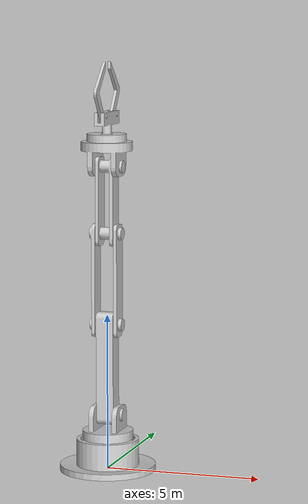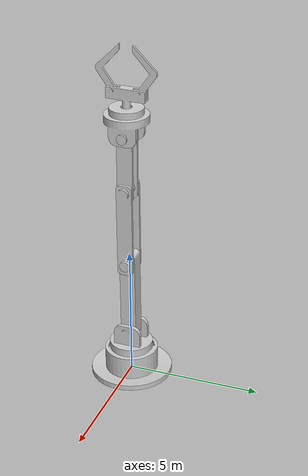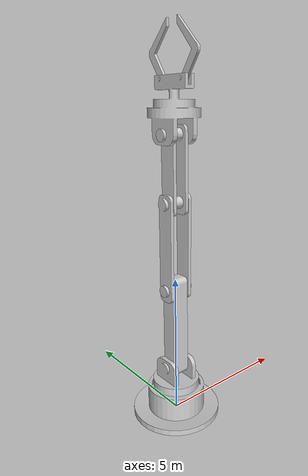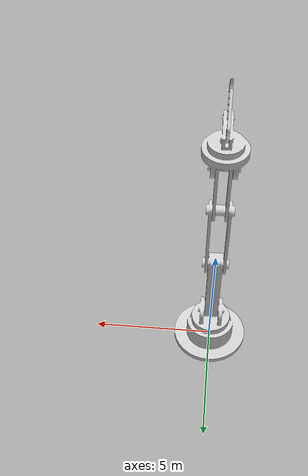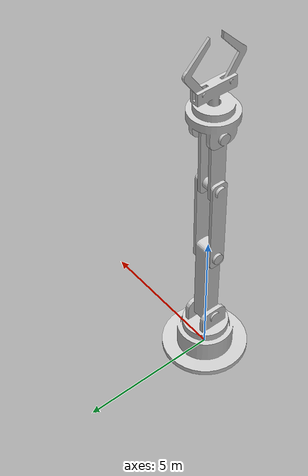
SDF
<sdf version='1.9'>
  <model name='pick_and_drop_arm'>
    <joint name='world_to_base' type='fixed'>
      <pose relative_to='__model__'>0 0 0 0 0 0</pose>
      <parent>world</parent>
      <child>base_link</child>
    </joint>
    <link name='base_link'>
      <pose relative_to='world_to_base'>0 0 0 0 0 0</pose>
        <inertial>
          <pose>0 0 0 0 0 0</pose>
          <mass>5.0</mass>
          <inertia>
            <ixx>0.5</ixx>
            <ixy>0</ixy>
            <ixz>0</ixz>
            <iyy>0.5</iyy>
            <iyz>0</iyz>
            <izz>0.5</izz>
          </inertia>
        </inertial>
      <collision name='base_link_collision'>
        <pose>0 0 0 0 0 0</pose>
        <geometry>
          <mesh>
            <scale>1 1 1</scale>
            <uri>model://pick_and_drop/meshes/base.dae</uri>
          </mesh>
        </geometry>
      </collision>
      <visual name='base_link_visual'>
        <pose>0 0 0 0 0 0</pose>
        <geometry>
          <mesh>
            <scale>1 1 1</scale>
            <uri>model://pick_and_drop/meshes/base.dae</uri>
          </mesh>
        </geometry>
        <material>
            <ambient>0.7 0.7 0.7 1</ambient>
            <diffuse>0.8 0.8 0.8 1</diffuse>
            <specular>0.2 0.2 0.2 1</specular>
        </material>
      </visual>
    </link>
    <joint name='base_joint' type='revolute'>
      <pose relative_to='base_link'>0 0 0.1 0 0 0</pose>
      <parent>base_link</parent>
      <child>link1</child>
      <axis>
        <xyz>0 0 1</xyz>
        <dynamics>
          <damping>5.0</damping>
          <friction>1.0</friction>
          <spring_reference>0</spring_reference>
          <spring_stiffness>0</spring_stiffness>
        </dynamics>
      </axis>
    </joint>
    <link name='link1'>
      <pose relative_to='base_joint'>0 0 0 0 0 0</pose>
        <inertial>
          <mass>4.0</mass>
          <inertia>
            <ixx>0.8</ixx>
            <iyy>0.8</iyy>
            <izz>0.6</izz>
            <ixy>0</ixy>
            <ixz>0</ixz>
            <iyz>0</iyz>
          </inertia>
        </inertial>
      <collision name='link1_collision'>
        <pose>0 0 0 0 0 0</pose>
        <geometry>
          <mesh>
            <scale>1 1 1</scale>
            <uri>model://pick_and_drop/meshes/1.dae</uri>
          </mesh>
        </geometry>
      </collision>
      <visual name='link1_visual'>
        <pose>0 0 0 0 0 0</pose>
        <geometry>
          <mesh>
            <scale>1 1 1</scale>
            <uri>model://pick_and_drop/meshes/1.dae</uri>
          </mesh>
        </geometry>
        <material>
            <ambient>0.7 0.7 0.7 1</ambient>
            <diffuse>0.8 0.8 0.8 1</diffuse>
            <specular>0.2 0.2 0.2 1</specular>
        </material>
      </visual>
    </link>
    <joint name='joint1' type='revolute'>
      <pose relative_to='link1'>0 0 1.67744 0 0 0</pose>
      <parent>link1</parent>
      <child>arm1</child>
      <axis>
        <xyz>1 0 0</xyz>
        <dynamics>
          <damping>8.0</damping>
          <friction>1.5</friction>
          <spring_reference>0</spring_reference>
          <spring_stiffness>0</spring_stiffness>
        </dynamics>
      </axis>
    </joint>
    <link name='arm1'>
      <pose relative_to='joint1'>0 0 0 0 0 0</pose>
        <inertial>
            <mass>5.0</mass>
            <inertia>
                <ixx>6.71</ixx>
                <ixy>0</ixy>
                <ixz>0</ixz>
                <iyy>3.84</iyy>
                <iyz>0</iyz>
                <izz>3.79</izz>
            </inertia>
        </inertial>
      <collision name='arm1_collision'>
        <pose>0 0 0 0 0 0</pose>
        <geometry>
          <mesh>
            <scale>1 1 1</scale>
            <uri>model://pick_and_drop/meshes/arm1.dae</uri>
          </mesh>
        </geometry>
      </collision>
      <visual name='arm1_visual'>
        <pose>0 0 0 0 0 0</pose>
        <geometry>
          <mesh>
            <scale>1 1 1</scale>
            <uri>model://pick_and_drop/meshes/arm1.dae</uri>
          </mesh>
        </geometry>
        <material>
            <ambient>0.7 0.7 0.7 1</ambient>
            <diffuse>0.8 0.8 0.8 1</diffuse>
            <specular>0.2 0.2 0.2 1</specular>
        </material>
      </visual>
    </link>
    <joint name='joint2' type='revolute'>
      <pose relative_to='arm1'>0 -0.007232 2.92735 0 0 0</pose>
      <parent>arm1</parent>
      <child>arm2</child>
      <axis>
        <xyz>1 0 0</xyz>
        <dynamics>
          <damping>8.0</damping>
          <friction>1.5</friction>
          <spring_reference>0</spring_reference>
          <spring_stiffness>0</spring_stiffness>
        </dynamics>
      </axis>
    </joint>
    <link name='arm2'>
      <pose relative_to='joint2'>0 0 0 0 0 0</pose>
        <inertial>
            <mass>5.0</mass>
            <inertia>
                <ixx>6.72</ixx>
                <ixy>0</ixy>
                <ixz>0</ixz>
                <iyy>3.89</iyy>
                <iyz>0</iyz>
                <izz>3.75</izz>
            </inertia>
        </inertial>
      <collision name='arm2_collision'>
        <pose>0 0 0 0 0 0</pose>
        <geometry>
          <mesh>
            <scale>1 1 1</scale>
            <uri>model://pick_and_drop/meshes/arm2.dae</uri>
          </mesh>
        </geometry>
      </collision>
      <visual name='arm2_visual'>
        <pose>0 0 0 0 0 0</pose>
        <geometry>
          <mesh>
            <scale>1 1 1</scale>
            <uri>model://pick_and_drop/meshes/arm2.dae</uri>
          </mesh>
        </geometry>
        <material>
            <ambient>0.7 0.7 0.7 1</ambient>
            <diffuse>0.8 0.8 0.8 1</diffuse>
            <specular>0.2 0.2 0.2 1</specular>
        </material>
      </visual>
    </link>
    <joint name='joint3' type='revolute'>
      <pose relative_to='arm2'>0 0.002234 2.9244 0 0 0</pose>
      <parent>arm2</parent>
      <child>arm3</child>
      <axis>
        <xyz>1 0 0</xyz>
        <dynamics>
          <damping>8.0</damping>
          <friction>1.5</friction>
          <spring_reference>0</spring_reference>
          <spring_stiffness>0</spring_stiffness>
        </dynamics>
      </axis>
    </joint>
    <link name='arm3'>
      <pose relative_to='joint3'>0 0 0 0 0 0</pose>
        <inertial>
            <mass>4.0</mass>
            <inertia>
                <ixx>2.96</ixx>
                <ixy>0</ixy>
                <ixz>0</ixz>
                <iyy>0.70</iyy>
                <iyz>0</iyz>
                <izz>3.08</izz>
            </inertia>
        </inertial>
      <collision name='arm3_collision'>
        <pose>0 0 0 0 0 0</pose>
        <geometry>
          <mesh>
            <scale>1 1 1</scale>
            <uri>model://pick_and_drop/meshes/arm3.dae</uri>
          </mesh>
        </geometry>
      </collision>
      <visual name='arm3_visual'>
        <pose>0 0 0 0 0 0</pose>
        <geometry>
          <mesh>
            <scale>1 1 1</scale>
            <uri>model://pick_and_drop/meshes/arm3.dae</uri>
          </mesh>
        </geometry>
        <material>
            <ambient>0.7 0.7 0.7 1</ambient>
            <diffuse>0.8 0.8 0.8 1</diffuse>
            <specular>0.2 0.2 0.2 1</specular>
        </material>
      </visual>
    </link>
    <joint name='joint4' type='revolute'>
      <pose relative_to='arm3'>0 0.012929 2.12653 0 0 0</pose>
      <parent>arm3</parent>
      <child>wrist</child>
      <axis>
        <xyz>1 0 0</xyz>
        <dynamics>
          <damping>8.0</damping>
          <friction>1.5</friction>
          <spring_reference>0</spring_reference>
          <spring_stiffness>0</spring_stiffness>
        </dynamics>
      </axis>
    </joint>
    <link name='wrist'>
      <pose relative_to='joint4'>0 0 0 0 0 0</pose>
        <inertial>
            <mass>8.0</mass>
            <inertia>
                <ixx>6.37</ixx>
                <ixy>0</ixy>
                <ixz>0</ixz>
                <iyy>5.03</iyy>
                <iyz>0</iyz>
                <izz>4.88</izz>
            </inertia>
        </inertial>
      <collision name='wrist_collision'>
        <pose>0 0 0 0 0 0</pose>
        <geometry>
          <mesh>
            <scale>1 1 1</scale>
            <uri>model://pick_and_drop/meshes/wrist.dae</uri>
          </mesh>
        </geometry>
      </collision>
      <visual name='wrist_visual'>
        <pose>0 0 0 0 0 0</pose>
        <geometry>
          <mesh>
            <scale>1 1 1</scale>
            <uri>model://pick_and_drop/meshes/wrist.dae</uri>
          </mesh>
        </geometry>
        <material>
            <ambient>0.7 0.7 0.7 1</ambient>
            <diffuse>0.8 0.8 0.8 1</diffuse>
            <specular>0.2 0.2 0.2 1</specular>
        </material>
      </visual>
    </link>
    <joint name='finger1_joint' type='revolute'>
      <pose relative_to='wrist'>0.005756 0.522025 1.59808 0 0 0</pose>
      <parent>wrist</parent>
      <child>finger1</child>
      <axis>
        <xyz>1 0 0</xyz>
        <limit>
          <lower>-1.57</lower>
          <upper>0</upper>
        </limit>
        <dynamics>
          <damping>0.5</damping>
          <friction>0.05</friction>
          <spring_reference>0</spring_reference>
          <spring_stiffness>0</spring_stiffness>
        </dynamics>
      </axis>
    </joint>
    <link name='finger1'>
      <pose relative_to='finger1_joint'>0 0 0 0 0 0</pose>
        <inertial>
            <mass>1.0</mass>
            <inertia>
                <ixx>0.32</ixx>
                <ixy>0</ixy>
                <ixz>0</ixz>
                <iyy>0.21</iyy>
                <iyz>0</iyz>
                <izz>0.11</izz>
            </inertia>
        </inertial>
      <collision name='finger1_collision'>
        <pose>0 0 0 0 0 0</pose>
        <geometry>
          <mesh>
            <scale>1 1 1</scale>
            <uri>model://pick_and_drop/meshes/finger1.dae</uri>
          </mesh>
        </geometry>
      </collision>
      <visual name='finger1_visual'>
        <pose>0 0 0 0 0 0</pose>
        <geometry>
          <mesh>
            <scale>1 1 1</scale>
            <uri>model://pick_and_drop/meshes/finger1.dae</uri>
          </mesh>
        </geometry>
        <material>
            <ambient>0.7 0.7 0.7 1</ambient>
            <diffuse>0.8 0.8 0.8 1</diffuse>
            <specular>0.2 0.2 0.2 1</specular>
        </material>
      </visual>
    </link>
    <joint name='finger2_joint' type='revolute'>
      <pose relative_to='wrist'>0.005756 -0.477477 1.61468 0 0 0</pose>
      <parent>wrist</parent>
      <child>finger2</child>
      <axis>
        <xyz>-1 0 0</xyz>
        <limit>
          <lower>-1.57</lower>
          <upper>0</upper>
        </limit>
        <dynamics>
          <damping>0.5</damping>
          <friction>0.05</friction>
          <spring_reference>0</spring_reference>
          <spring_stiffness>0</spring_stiffness>
        </dynamics>
      </axis>
    </joint>
    <link name='finger2'>
      <pose relative_to='finger2_joint'>0 0 0 0 0 0</pose>
        <inertial>
            <mass>1.0</mass>
            <inertia>
                <ixx>0.32</ixx>
                <ixy>0</ixy>
                <ixz>0</ixz>
                <iyy>0.21</iyy>
                <iyz>0</iyz>
                <izz>0.11</izz>
            </inertia>
        </inertial>
      <collision name='finger2_collision'>
        <pose>0 0 0 0 0 0</pose>
        <geometry>
          <mesh>
            <scale>1 1 1</scale>
            <uri>model://pick_and_drop/meshes/finger2.dae</uri>
          </mesh>
        </geometry>
      </collision>
      <visual name='finger2_visual'>
        <pose>0 0 0 0 0 0</pose>
        <geometry>
          <mesh>
            <scale>1 1 1</scale>
            <uri>model://pick_and_drop/meshes/finger2.dae</uri>
          </mesh>
        </geometry>
        <material>
            <ambient>0.7 0.7 0.7 1</ambient>
            <diffuse>0.8 0.8 0.8 1</diffuse>
            <specular>0.2 0.2 0.2 1</specular>
        </material>
      </visual>
    </link>
    <!-- ================= CONTROLLERS ================= -->
<!-- ================= CONTROLLERS ================= -->
    <!-- Torque Control for base_joint (Rotation) -->
    <plugin
      filename="gz-sim-apply-joint-force-system"
      name="gz::sim::systems::ApplyJointForce">
      <joint_name>base_joint</joint_name>
    </plugin>

    <!-- Torque Control for joint1 (Shoulder) -->
    <plugin
      filename="gz-sim-apply-joint-force-system"
      name="gz::sim::systems::ApplyJointForce">
      <joint_name>joint1</joint_name>
    </plugin>

    <!-- Torque Control for joint2 (Elbow) -->
    <plugin
      filename="gz-sim-apply-joint-force-system"
      name="gz::sim::systems::ApplyJointForce">
      <joint_name>joint2</joint_name>
    </plugin>

    <!-- Torque Control for joint3 (Wrist Pitch) -->
    <plugin
      filename="gz-sim-apply-joint-force-system"
      name="gz::sim::systems::ApplyJointForce">
      <joint_name>joint3</joint_name>
    </plugin>

    <!-- Torque Control for joint4 (Wrist Roll) -->
    <plugin
      filename="gz-sim-apply-joint-force-system"
      name="gz::sim::systems::ApplyJointForce">
      <joint_name>joint4</joint_name>
    </plugin>

    <!-- Feedback System: Publishes position/velocity of all joints -->
    <plugin
      filename="gz-sim-joint-state-publisher-system"
      name="gz::sim::systems::JointStatePublisher">
    </plugin>

    <!-- Torque Control for finger1 -->
    <plugin
      filename="gz-sim-apply-joint-force-system"
      name="gz::sim::systems::ApplyJointForce">
      <joint_name>finger1_joint</joint_name>
    </plugin>

    <!-- Torque Control for finger2 -->
    <plugin
      filename="gz-sim-apply-joint-force-system"
      name="gz::sim::systems::ApplyJointForce">
      <joint_name>finger2_joint</joint_name>
    </plugin>
  </model>
</sdf>
